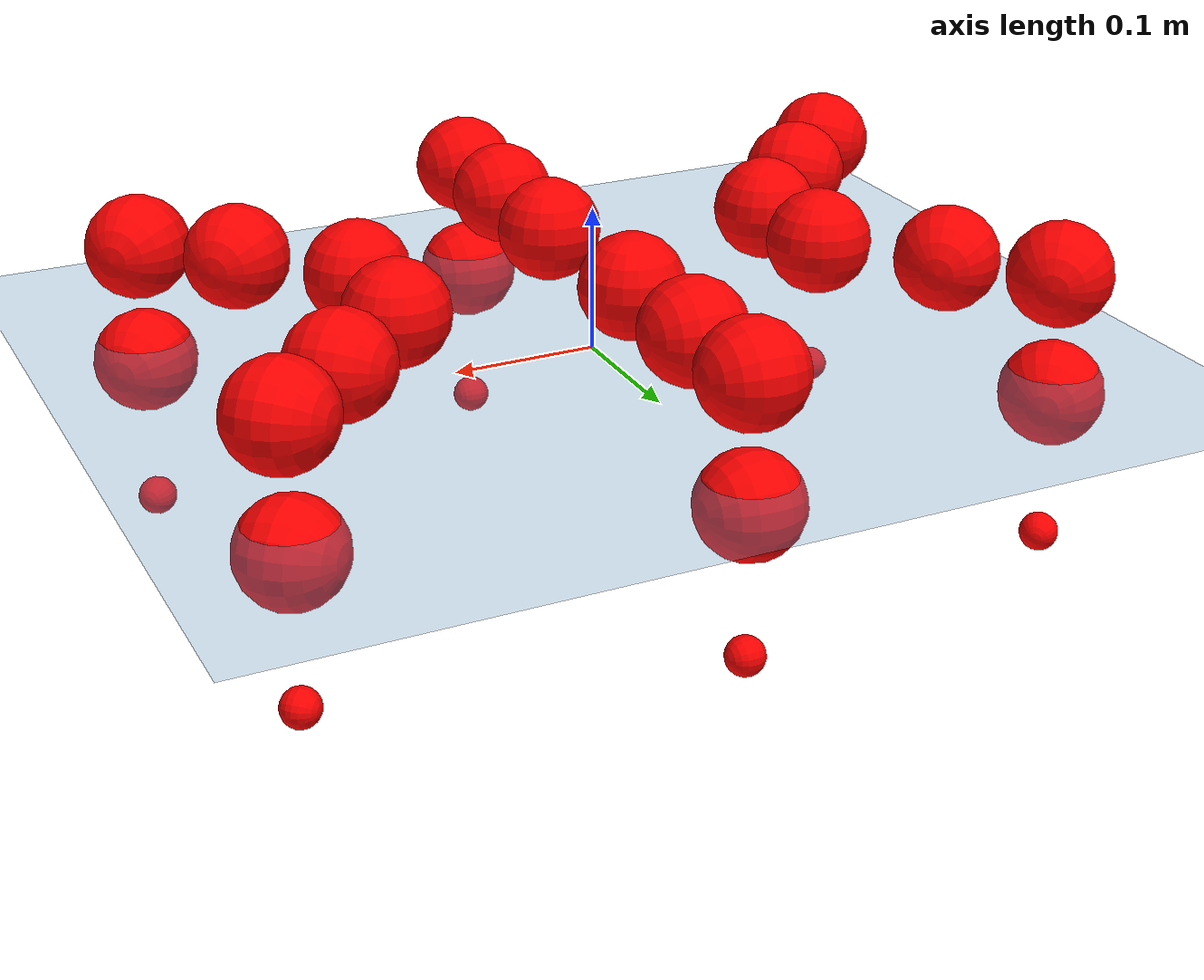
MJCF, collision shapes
<mujoco model="Golem">
  <compiler angle="radian" assetdir="assets" balanceinertia="true" inertiafromgeom="false"/>

  <option timestep="0.005" density="1.2" viscosity="2e-05"/>

  <size nkey="1"/>

  <visual>
    <quality shadowsize="8192"/>
    <map shadowclip="0.5"/>
  </visual>

  <default>
    <default class="/">
      <joint armature="0.01" damping="0.01" frictionloss="0.01"/>
      <geom contype="0" conaffinity="0" group="1" solref="-1000 -80"/>
      <site size="0.01 0.005 0.005" group="5"/>
      <general forcelimited="true" biastype="affine" gainprm="25" biasprm="0 -25 -0.5"/>
      <default class="visual">
        <geom type="mesh" group="2"/>
      </default>
      <default class="collision">
        <geom group="3"/>
      </default>
      <default class="foot">
        <geom size="0.01 0 0" condim="6" group="4" priority="1" solimp="0.015 1 0.01"/>
      </default>
      <default class="reward_collision_sphere">
        <geom group="5" rgba="1 0 0 1"/>
      </default>
    </default>
  </default>

  <asset>
    <texture type="skybox" colorspace="auto" name="//unnamed_texture_0" builtin="gradient" rgb1="0.95 0.95 0.95" rgb2="0.95 0.95 0.95" width="100" height="600"/>
    <texture type="2d" colorspace="auto" name="texplane" builtin="checker" rgb1="0.345 0.575 0.748" rgb2="0.345 0.575 0.748" markrgb="1 1 1" width="512" height="512"/>
    <material name="MatPlane" class="/" texture="texplane" texuniform="true" texrepeat="2 2" specular="0.9"/>
    <mesh name="body" class="/" file="body.stl" scale="0.001 0.001 0.001"/>
    <mesh name="coxa" class="/" file="coxa.stl" scale="0.001 0.001 0.001"/>
    <mesh name="femur" class="/" file="femur.stl" scale="0.001 0.001 0.001"/>
    <mesh name="tibia" class="/" file="tibia.stl" scale="0.001 0.001 0.001"/>
    <mesh name="tarsus" class="/" file="tarsus.stl" scale="0.001 0.001 0.001"/>
  </asset>

  <worldbody>
    <geom name="floor" class="/" size="100 100 0.125" type="plane" group="0" material="MatPlane"/>
    <light name="toplight_shadow" class="/" pos="0 0 5" dir="0.0990148 0.0990148 -0.990148" type="directional" ambient="0.04 0.04 0.04" diffuse="0.55 0.55 0.55" specular="0.12 0.12 0.12"/>
    <light name="toplight_fill" class="/" pos="0 0 5" dir="0.0990148 0.0990148 -0.990148" type="directional" castshadow="false" ambient="0.04 0.04 0.04" diffuse="0.3 0.3 0.3" specular="0.08 0.08 0.08"/>
    <body name="trunk" pos="5.37307e-05 -1.7846e-05 -0.000150757" quat="1 0.000285431 -0.000342695 0.000352999">
      <inertial pos="-0.00056331 0.000747897 -0.00378786" quat="0.999987 0.00469501 0.0016911 -0.000362174" mass="2.62677" diaginertia="0.00901652 0.00165197 0.0106967"/>
      <joint name="//unnamed_joint_0" type="free"/>
      <geom name="//unnamed_geom_1" class="/" pos="0 0 0.0648651" quat="1 0 0 0" type="mesh" rgba="0.9 0.9 0.9 1" mesh="body"/>
      <site name="imu" class="/" pos="0.130985 0.00654213 0.112674" size="0.0089543"/>
      <camera name="track" class="/" pos="0 -1.39038 0" quat="0.707107 0.707107 0 0" mode="trackcom"/>
      <camera name="ego_camera" class="/" pos="0.127086 0 0.101352" quat="-0.5 -0.5 0.5 0.5"/>
      <body name="coxa_RR" pos="-0.174132 -0.0582134 0.0662134" quat="0.382701 -0.00112649 -0.000358763 -0.923871">
        <inertial pos="0.000846741 -0.000984681 0.000708626" quat="0.99999 0.000418342 -0.00263052 -0.00365163" mass="0.147814" diaginertia="0.00912064 0.00167621 0.011128"/>
        <joint name="coxa_joint_RR" class="/" pos="0 0 0" axis="-0.00253693 0.00752197 -0.999968" range="-3.15763 3.15846" armature="0.00886762" damping="0" frictionloss="0.0084984"/>
        <geom name="//unnamed_geom_2" class="/" type="mesh" rgba="0.2 0.2 0.2 1" mesh="coxa"/>
        <geom name="//unnamed_geom_3" class="reward_collision_sphere" size="0.0358172" pos="-0.0293276 0 0"/>
        <body name="femur_RR" pos="0.0581955 0.000933728 0.000780401" quat="0.500179 -0.500752 0.499769 0.499299">
          <inertial pos="-2.00573e-05 0.00207318 -0.000452022" quat="1 0.000217273 -4.03841e-05 -9.09907e-05" mass="0.141597" diaginertia="0.0087294 0.00160705 0.0105009"/>
          <joint name="femur_joint_RR" class="/" pos="0 0 0" axis="-0.00106191 -0.000645869 -0.999999" range="-3.15933 3.15909" armature="0.00954951" damping="0" frictionloss="0.00900543"/>
          <geom name="//unnamed_geom_4" class="/" type="mesh" rgba="0.9 0.9 0.9 1" mesh="femur"/>
          <geom name="//unnamed_geom_5" class="reward_collision_sphere" size="0.0358172"/>
          <body name="tibia_RR" pos="-0.000558706 -0.076412 -0.000359691" quat="-3.62133e-05 1 5.45357e-06 -2.01172e-05">
            <inertial pos="0.00034969 0.00210441 -9.06995e-05" quat="1 4.65506e-05 3.90132e-05 -0.000124234" mass="0.142482" diaginertia="0.00882848 0.00161719 0.0105405"/>
            <joint name="tibia_joint_RR" class="/" pos="0 0 0" axis="0.00714029 -0.00683374 0.999951" range="-3.10031 3.13323" armature="0.00911987" damping="0.00114152" frictionloss="0.0100176"/>
            <geom name="//unnamed_geom_6" class="/" type="mesh" rgba="0.2 0.2 0.2 1" mesh="tibia"/>
            <geom name="//unnamed_geom_7" class="reward_collision_sphere" size="0.0358172"/>
            <body name="tarsus_RR" pos="0.0848549 0.00131048 -0.00216638" quat="1 0.000147844 -6.98032e-05 5.75446e-05">
              <inertial pos="0.057811 0.000457548 0.000514303" quat="0.498694 0.501201 0.498022 0.502071" mass="0.140475" diaginertia="0.00874084 0.00160753 0.0107835"/>
              <joint name="tarsus_joint_RR" class="/" pos="0 0 0" axis="0.000435252 0.00296355 0.999996" range="-3.13145 3.12761" armature="0.00930089" damping="0.00367742" frictionloss="0.00911473"/>
              <geom name="//unnamed_geom_8" class="/" type="mesh" rgba="0.9 0.9 0.9 1" mesh="tarsus"/>
              <geom name="foot_1" class="foot" size="0.00848687" pos="0.10949 0 0" quat="0 -0.707107 0 0.707107"/>
              <geom name="//unnamed_geom_10" class="reward_collision_sphere" size="0.0358172"/>
              <geom name="//unnamed_geom_11" class="reward_collision_sphere" size="0.0134315" pos="0.10509 0 0"/>
              <site name="foot_1" class="foot" pos="0.10949 0 0" quat="0 -0.707107 0 0.707107" size="0.0089543"/>
            </body>
          </body>
        </body>
      </body>
      <body name="coxa_RM" pos="0.0018757 -0.0947312 0.0653943" quat="0.707088 -5.93912e-05 -7.45361e-05 -0.707125">
        <inertial pos="0.000660621 -6.10457e-05 -0.00106348" quat="0.999936 0.00508661 -0.00991063 0.00172903" mass="0.148896" diaginertia="0.00923005 0.00171209 0.0111208"/>
        <joint name="coxa_joint_RM" class="/" pos="0 0 0" axis="-0.00843995 0.00393197 -0.999957" range="-3.13984 3.14923" armature="0.00932869" damping="0.0131011" frictionloss="0.0090525"/>
        <geom name="//unnamed_geom_12" class="/" type="mesh" rgba="0.2 0.2 0.2 1" mesh="coxa"/>
        <geom name="//unnamed_geom_13" class="reward_collision_sphere" size="0.0358172" pos="-0.0293276 0 0"/>
        <body name="femur_RM" pos="0.0553084 -0.00121759 0.000105322" quat="0.499948 -0.500097 0.500064 0.49989">
          <inertial pos="-0.000246326 0.000364348 -0.000419415" quat="1 -3.75212e-05 -0.000123537 0.00016809" mass="0.143064" diaginertia="0.00878736 0.00162892 0.0108087"/>
          <joint name="femur_joint_RM" class="/" pos="0 0 0" axis="0.000302388 0.000292387 -1" range="-3.11671 3.12548" armature="0.00915615" damping="0.00771746" frictionloss="0.00970199"/>
          <geom name="//unnamed_geom_14" class="/" type="mesh" rgba="0.9 0.9 0.9 1" mesh="femur"/>
          <geom name="//unnamed_geom_15" class="reward_collision_sphere" size="0.0358172"/>
          <body name="tibia_RM" pos="0.000819256 -0.0742209 -0.00111433" quat="-5.24785e-05 1 8.73396e-05 -0.000216563">
            <inertial pos="0.000650464 0.000247791 0.000972179" quat="0.999999 -0.000308266 -0.000886114 -0.00109338" mass="0.147136" diaginertia="0.00893451 0.00162659 0.0107849"/>
            <joint name="tibia_joint_RM" class="/" pos="0 0 0" axis="-0.00257363 -0.00794456 0.999965" range="-3.15883 3.14714" armature="0.00805278" damping="0.00943861" frictionloss="0.0098132"/>
            <geom name="//unnamed_geom_16" class="/" type="mesh" rgba="0.2 0.2 0.2 1" mesh="tibia"/>
            <geom name="//unnamed_geom_17" class="reward_collision_sphere" size="0.0358172"/>
            <body name="tarsus_RM" pos="0.0831602 -0.00202919 9.08943e-05" quat="1 0.000222207 7.87199e-05 -5.39242e-05">
              <inertial pos="0.0583633 0.000900035 2.2871e-05" quat="0.501144 0.49979 0.499705 0.499359" mass="0.148562" diaginertia="0.00909093 0.00166303 0.0109157"/>
              <joint name="tarsus_joint_RM" class="/" pos="0 0 0" axis="0.00348865 0.00320023 0.999989" range="-3.15995 3.14549" armature="0.00931455" damping="0.00485657" frictionloss="0.00869599"/>
              <geom name="//unnamed_geom_18" class="/" type="mesh" rgba="0.9 0.9 0.9 1" mesh="tarsus"/>
              <geom name="foot_2" class="foot" size="0.00896747" pos="0.10949 0 0" quat="0 -0.707107 0 0.707107"/>
              <geom name="//unnamed_geom_20" class="reward_collision_sphere" size="0.0358172"/>
              <geom name="//unnamed_geom_21" class="reward_collision_sphere" size="0.0134315" pos="0.10509 0 0"/>
              <site name="foot_2" class="foot" pos="0.10949 0 0" quat="0 -0.707107 0 0.707107" size="0.0089543"/>
            </body>
          </body>
        </body>
      </body>
      <body name="coxa_RF" pos="0.172874 -0.0600116 0.0665562" quat="0.92388 -0.000215731 -0.000251959 -0.382681">
        <inertial pos="-0.00186918 0.000616298 -0.000693298" quat="1 1.85366e-05 2.31506e-05 -5.28188e-06" mass="0.143865" diaginertia="0.00919768 0.00168035 0.0109929"/>
        <joint name="coxa_joint_RF" class="/" pos="0 0 0" axis="0.0021885 -0.00788404 -0.999967" range="-3.12833 3.13676" armature="0.00897019" damping="0.019777" frictionloss="0.00973033"/>
        <geom name="//unnamed_geom_22" class="/" type="mesh" rgba="0.2 0.2 0.2 1" mesh="coxa"/>
        <geom name="//unnamed_geom_23" class="reward_collision_sphere" size="0.0358172" pos="-0.0293276 0 0"/>
        <body name="femur_RF" pos="0.0592287 0.000119176 0.000277535" quat="0.499862 -0.499681 0.500608 0.499849">
          <inertial pos="0.000420704 -0.000411089 0.00082329" quat="0.999998 -0.00144492 -0.00164332 -0.000179025" mass="0.144902" diaginertia="0.00889514 0.00161492 0.0107006"/>
          <joint name="femur_joint_RF" class="/" pos="0 0 0" axis="0.0034886 0.00405103 -0.999986" range="-3.15606 3.14253" armature="0.00931519" damping="0.00990838" frictionloss="0.00914172"/>
          <geom name="//unnamed_geom_24" class="/" type="mesh" rgba="0.9 0.9 0.9 1" mesh="femur"/>
          <geom name="//unnamed_geom_25" class="reward_collision_sphere" size="0.0358172"/>
          <body name="tibia_RF" pos="0.0020159 -0.0750301 0.000564683" quat="0.000555346 1 5.80266e-05 0.000142752">
            <inertial pos="-0.000217762 -0.00160194 -0.00118987" quat="0.999965 -0.00163733 -0.00315239 0.00757334" mass="0.137815" diaginertia="0.00877678 0.00158377 0.0106616"/>
            <joint name="tibia_joint_RF" class="/" pos="0 0 0" axis="0.00517337 -0.00531966 0.999972" stiffness="0.00103361" range="-3.12584 3.1426" armature="0.00906433" damping="0" frictionloss="0.00902493"/>
            <geom name="//unnamed_geom_26" class="/" type="mesh" rgba="0.2 0.2 0.2 1" mesh="tibia"/>
            <geom name="//unnamed_geom_27" class="reward_collision_sphere" size="0.0358172"/>
            <body name="tarsus_RF" pos="0.0829012 0.000421805 -0.00109688" quat="1 1.55557e-05 -3.28859e-05 -1.675e-05">
              <inertial pos="0.0570373 -6.18394e-05 -0.0005713" quat="0.501744 0.496338 0.502956 0.498937" mass="0.145709" diaginertia="0.00910392 0.00161272 0.0108171"/>
              <joint name="tarsus_joint_RF" class="/" pos="0 0 0" axis="-0.00218838 0.0140684 0.999899" range="-3.1444 3.14833" armature="0.0092333" damping="0.00844789" frictionloss="0.00880711"/>
              <geom name="//unnamed_geom_28" class="/" type="mesh" rgba="0.9 0.9 0.9 1" mesh="tarsus"/>
              <geom name="foot_3" class="foot" size="0.0086233" pos="0.10949 0 0" quat="0 -0.707107 0 0.707107"/>
              <geom name="//unnamed_geom_30" class="reward_collision_sphere" size="0.0358172"/>
              <geom name="//unnamed_geom_31" class="reward_collision_sphere" size="0.0134315" pos="0.10509 0 0"/>
              <site name="foot_3" class="foot" pos="0.10949 0 0" quat="0 -0.707107 0 0.707107" size="0.0089543"/>
            </body>
          </body>
        </body>
      </body>
      <body name="coxa_LR" pos="-0.173145 0.0592142 0.0665521" quat="0.383345 0.000143214 -0.000383857 0.923605">
        <inertial pos="0.000822645 0.000950654 -0.00107865" quat="0.999999 -0.000280123 0.000465446 0.00159267" mass="0.142476" diaginertia="0.00901505 0.0016134 0.0106583"/>
        <joint name="coxa_joint_LR" class="/" pos="0 0 0" axis="-0.00365269 0.00830942 -0.999959" range="-3.12247 3.17472" armature="0.00895972" damping="0.0104009" frictionloss="0.00921853"/>
        <geom name="//unnamed_geom_32" class="/" type="mesh" rgba="0.2 0.2 0.2 1" mesh="coxa"/>
        <geom name="//unnamed_geom_33" class="reward_collision_sphere" size="0.0358172" pos="-0.0293276 0 0"/>
        <body name="femur_LR" pos="0.0593664 -0.00166547 -0.000836414" quat="0.500029 -0.500088 0.499682 0.500201">
          <inertial pos="0.000417703 0.000464051 -0.00113305" quat="0.999948 0.00927485 0.00128129 -0.0041131" mass="0.146188" diaginertia="0.00909205 0.00165663 0.0107567"/>
          <joint name="femur_joint_LR" class="/" pos="0 0 0" axis="-0.0127349 0.00308067 0.999914" range="-3.12536 3.11955" armature="0.00998295" damping="0.00616211" frictionloss="0.00885611"/>
          <geom name="//unnamed_geom_34" class="/" type="mesh" rgba="0.9 0.9 0.9 1" mesh="femur"/>
          <geom name="//unnamed_geom_35" class="reward_collision_sphere" size="0.0358172"/>
          <body name="tibia_LR" pos="0.000939309 -0.0757722 -0.00215028" quat="0.000173958 1 0.000358624 0.000278327">
            <inertial pos="0.000375791 -0.000854684 0.00111002" quat="0.999998 0.000854766 -0.000882262 0.0018084" mass="0.145611" diaginertia="0.00883331 0.00159614 0.0107461"/>
            <joint name="tibia_joint_LR" class="/" pos="0 0 0" axis="0.00188777 1.57331e-05 -0.999998" range="-3.09904 3.15235" armature="0.00845107" damping="0.00811815" frictionloss="0.00893088"/>
            <geom name="//unnamed_geom_36" class="/" type="mesh" rgba="0.2 0.2 0.2 1" mesh="tibia"/>
            <geom name="//unnamed_geom_37" class="reward_collision_sphere" size="0.0358172"/>
            <body name="tarsus_LR" pos="0.0842438 0.000924128 0.00160373" quat="1 -1.22166e-05 -3.47034e-05 2.9298e-05">
              <inertial pos="0.0595173 -0.00114215 -7.19202e-05" quat="0.500126 0.499962 0.500078 0.499833" mass="0.142079" diaginertia="0.00903329 0.00169294 0.0107663"/>
              <joint name="tarsus_joint_LR" class="/" pos="0 0 0" axis="0.00170326 -0.00372781 -0.999992" range="-3.12914 3.13763" armature="0.00889444" damping="0.00105425" frictionloss="0.00902946"/>
              <geom name="//unnamed_geom_38" class="/" type="mesh" rgba="0.9 0.9 0.9 1" mesh="tarsus"/>
              <geom name="foot_4" class="foot" size="0.00886214" pos="0.10949 0 0" quat="0.707107 0 -0.707107 0"/>
              <geom name="//unnamed_geom_40" class="reward_collision_sphere" size="0.0358172"/>
              <geom name="//unnamed_geom_41" class="reward_collision_sphere" size="0.0134315" pos="0.10509 0 0"/>
              <site name="foot_4" class="foot" pos="0.10949 0 0" quat="0.707107 0 -0.707107 0" size="0.0089543"/>
            </body>
          </body>
        </body>
      </body>
      <body name="coxa_LM" pos="0.000959537 0.0906807 0.0673749" quat="0.707182 0.000158076 0.000633267 0.707031">
        <inertial pos="0.000190542 -6.03027e-05 -0.00125713" quat="1 0.00025926 0.000515005 -0.000624154" mass="0.143771" diaginertia="0.00874426 0.0016123 0.0105493"/>
        <joint name="coxa_joint_LM" class="/" pos="0 0 0" axis="-0.000710596 -1.75468e-05 -1" stiffness="0.000466335" range="-3.13499 3.13575" armature="0.00849633" damping="0.00364859" frictionloss="0.0089342"/>
        <geom name="//unnamed_geom_42" class="/" type="mesh" rgba="0.2 0.2 0.2 1" mesh="coxa"/>
        <geom name="//unnamed_geom_43" class="reward_collision_sphere" size="0.0358172" pos="-0.0293276 0 0"/>
        <body name="femur_LM" pos="0.0548981 0.000159668 -5.4262e-05" quat="0.499833 -0.500133 0.500047 0.499987">
          <inertial pos="-0.000687072 -0.000106871 -0.00241016" quat="0.999993 0.00186756 0.000619196 -0.00330818" mass="0.144872" diaginertia="0.00900964 0.00164696 0.0108072"/>
          <joint name="femur_joint_LM" class="/" pos="0 0 0" axis="0.00296678 0.00271488 0.999992" range="-3.15419 3.09451" armature="0.00899169" damping="0" frictionloss="0.00836201"/>
          <geom name="//unnamed_geom_44" class="/" type="mesh" rgba="0.9 0.9 0.9 1" mesh="femur"/>
          <geom name="//unnamed_geom_45" class="reward_collision_sphere" size="0.0358172"/>
          <body name="tibia_LM" pos="9.83424e-05 -0.0721913 0.00113699" quat="-0.000291415 1 1.18238e-05 0.0002712">
            <inertial pos="-0.000907845 3.55748e-05 -9.32718e-05" quat="1 -0.00010734 1.24095e-05 -0.000118994" mass="0.138687" diaginertia="0.00867467 0.0015753 0.0103611"/>
            <joint name="tibia_joint_LM" class="/" pos="0 0 0" axis="-0.00641078 0.00405765 -0.999971" range="-3.11644 3.15073" armature="0.0100768" damping="0" frictionloss="0.0094622"/>
            <geom name="//unnamed_geom_46" class="/" type="mesh" rgba="0.2 0.2 0.2 1" mesh="tibia"/>
            <geom name="//unnamed_geom_47" class="reward_collision_sphere" size="0.0358172"/>
            <body name="tarsus_LM" pos="0.0868656 6.94416e-05 -0.00091705" quat="1 -4.90298e-06 2.47812e-05 6.4671e-06">
              <inertial pos="0.05976 -0.00146521 -0.000434929" quat="0.501041 0.499027 0.501698 0.498225" mass="0.139741" diaginertia="0.00875097 0.00152806 0.0105103"/>
              <joint name="tarsus_joint_LM" class="/" pos="0 0 0" axis="-0.000310928 -0.000289828 -1" stiffness="0.00715203" range="-3.13855 3.13843" armature="0.00901019" damping="0.0187824" frictionloss="0.0099458"/>
              <geom name="//unnamed_geom_48" class="/" type="mesh" rgba="0.9 0.9 0.9 1" mesh="tarsus"/>
              <geom name="foot_5" class="foot" size="0.00901727" pos="0.10949 0 0" quat="0.707107 0 -0.707107 0"/>
              <geom name="//unnamed_geom_50" class="reward_collision_sphere" size="0.0358172"/>
              <geom name="//unnamed_geom_51" class="reward_collision_sphere" size="0.0134315" pos="0.10509 0 0"/>
              <site name="foot_5" class="foot" pos="0.10949 0 0" quat="0.707107 0 -0.707107 0" size="0.0089543"/>
            </body>
          </body>
        </body>
      </body>
      <body name="coxa_LF" pos="0.174392 0.0569018 0.0659078" quat="0.923942 -0.000272491 1.05446e-05 0.382531">
        <inertial pos="-0.00170155 -0.00225673 -0.000260104" quat="0.999989 -0.00109906 -0.00313689 0.00330512" mass="0.142168" diaginertia="0.00880659 0.00155619 0.0106726"/>
        <joint name="coxa_joint_LF" class="/" pos="0 0 0" axis="0.00545046 -0.00335048 -0.99998" range="-3.13292 3.13811" armature="0.00838955" damping="0" frictionloss="0.00858639"/>
        <geom name="//unnamed_geom_52" class="/" type="mesh" rgba="0.2 0.2 0.2 1" mesh="coxa"/>
        <geom name="//unnamed_geom_53" class="reward_collision_sphere" size="0.0358172" pos="-0.0293276 0 0"/>
        <body name="femur_LF" pos="0.0581066 0.00231761 0.00044152" quat="0.499825 -0.500098 0.49993 0.500147">
          <inertial pos="0.000159308 9.83498e-05 -0.000940487" quat="1 0.000108716 -0.00019668 -2.46455e-05" mass="0.139057" diaginertia="0.00852448 0.00159356 0.0104946"/>
          <joint name="femur_joint_LF" class="/" pos="0 0 0" axis="0.00890602 0.00494132 0.999948" range="-3.12536 3.15902" armature="0.00880888" damping="0.00537689" frictionloss="0.00905703"/>
          <geom name="//unnamed_geom_54" class="/" type="mesh" rgba="0.9 0.9 0.9 1" mesh="femur"/>
          <geom name="//unnamed_geom_55" class="reward_collision_sphere" size="0.0358172"/>
          <body name="tibia_LF" pos="-0.00031993 -0.0766578 -0.000569163" quat="-2.12876e-05 1 0.000192538 -1.72846e-05">
            <inertial pos="-9.48694e-05 0.00193937 0.000537159" quat="0.999997 -0.00211573 0.00134563 -0.0005931" mass="0.144857" diaginertia="0.00896254 0.0016361 0.0108087"/>
            <joint name="tibia_joint_LF" class="/" pos="0 0 0" axis="0.000739725 0.00104815 -0.999999" range="-3.12935 3.11894" armature="0.00946257" damping="0.000969633" frictionloss="0.00856929"/>
            <geom name="//unnamed_geom_56" class="/" type="mesh" rgba="0.2 0.2 0.2 1" mesh="tibia"/>
            <geom name="//unnamed_geom_57" class="reward_collision_sphere" size="0.0358172"/>
            <body name="tarsus_LF" pos="0.0872733 -0.000187158 -0.0019018" quat="1 4.30516e-07 1.96097e-07 2.47765e-06">
              <inertial pos="0.0576666 -0.000521839 0.000865411" quat="0.508138 0.492845 0.495846 0.503027" mass="0.144931" diaginertia="0.00896296 0.0016159 0.0106017"/>
              <joint name="tarsus_joint_LF" class="/" pos="0 0 0" axis="-0.00892353 0.00643258 -0.999939" stiffness="0.0301026" range="-3.15378 3.12706" armature="0.00888303" damping="0.0282244" frictionloss="0.00930576"/>
              <geom name="//unnamed_geom_58" class="/" type="mesh" rgba="0.9 0.9 0.9 1" mesh="tarsus"/>
              <geom name="foot_6" class="foot" size="0.00876941" pos="0.10949 0 0" quat="0.707107 0 -0.707107 0"/>
              <geom name="//unnamed_geom_60" class="reward_collision_sphere" size="0.0358172"/>
              <geom name="//unnamed_geom_61" class="reward_collision_sphere" size="0.0134315" pos="0.10509 0 0"/>
              <site name="foot_6" class="foot" pos="0.10949 0 0" quat="0.707107 0 -0.707107 0" size="0.0089543"/>
            </body>
          </body>
        </body>
      </body>
    </body>
  </worldbody>

  <contact>
    <pair class="/" geom1="floor" geom2="foot_1" name="//unnamed_contact_0"/>
    <pair class="/" geom1="floor" geom2="foot_2" name="//unnamed_contact_1"/>
    <pair class="/" geom1="floor" geom2="foot_3" name="//unnamed_contact_2"/>
    <pair class="/" geom1="floor" geom2="foot_4" name="//unnamed_contact_3"/>
    <pair class="/" geom1="floor" geom2="foot_5" name="//unnamed_contact_4"/>
    <pair class="/" geom1="floor" geom2="foot_6" name="//unnamed_contact_5"/>
  </contact>

  <actuator>
    <general name="coxa_joint_RR" class="/" joint="coxa_joint_RR" forcerange="-6.57424 6.57424" gainprm="21.5978" biasprm="0 -21.5978 -0.453003"/>
    <general name="femur_joint_RR" class="/" joint="femur_joint_RR" forcerange="-6.33156 6.33156" gainprm="21.5978" biasprm="0 -21.5978 -0.453003"/>
    <general name="tibia_joint_RR" class="/" joint="tibia_joint_RR" forcerange="-6.52312 6.52312" gainprm="21.5978" biasprm="0 -21.5978 -0.453003"/>
    <general name="tarsus_joint_RR" class="/" joint="tarsus_joint_RR" forcerange="-6.81657 6.81657" gainprm="21.5978" biasprm="0 -21.5978 -0.453003"/>
    <general name="coxa_joint_RM" class="/" joint="coxa_joint_RM" forcerange="-6.78034 6.78034" gainprm="21.5978" biasprm="0 -21.5978 -0.453003"/>
    <general name="femur_joint_RM" class="/" joint="femur_joint_RM" forcerange="-6.82823 6.82823" gainprm="21.5978" biasprm="0 -21.5978 -0.453003"/>
    <general name="tibia_joint_RM" class="/" joint="tibia_joint_RM" forcerange="-6.30825 6.30825" gainprm="21.5978" biasprm="0 -21.5978 -0.453003"/>
    <general name="tarsus_joint_RM" class="/" joint="tarsus_joint_RM" forcerange="-6.31123 6.31123" gainprm="21.5978" biasprm="0 -21.5978 -0.453003"/>
    <general name="coxa_joint_RF" class="/" joint="coxa_joint_RF" forcerange="-6.26258 6.26258" gainprm="21.5978" biasprm="0 -21.5978 -0.453003"/>
    <general name="femur_joint_RF" class="/" joint="femur_joint_RF" forcerange="-6.60195 6.60195" gainprm="21.5978" biasprm="0 -21.5978 -0.453003"/>
    <general name="tibia_joint_RF" class="/" joint="tibia_joint_RF" forcerange="-6.28582 6.28582" gainprm="21.5978" biasprm="0 -21.5978 -0.453003"/>
    <general name="tarsus_joint_RF" class="/" joint="tarsus_joint_RF" forcerange="-6.54634 6.54634" gainprm="21.5978" biasprm="0 -21.5978 -0.453003"/>
    <general name="coxa_joint_LR" class="/" joint="coxa_joint_LR" forcerange="-6.48879 6.48879" gainprm="21.5978" biasprm="0 -21.5978 -0.453003"/>
    <general name="femur_joint_LR" class="/" joint="femur_joint_LR" forcerange="-6.5501 6.5501" gainprm="21.5978" biasprm="0 -21.5978 -0.453003"/>
    <general name="tibia_joint_LR" class="/" joint="tibia_joint_LR" forcerange="-6.40743 6.40743" gainprm="21.5978" biasprm="0 -21.5978 -0.453003"/>
    <general name="tarsus_joint_LR" class="/" joint="tarsus_joint_LR" forcerange="-6.60357 6.60357" gainprm="21.5978" biasprm="0 -21.5978 -0.453003"/>
    <general name="coxa_joint_LM" class="/" joint="coxa_joint_LM" forcerange="-6.64455 6.64455" gainprm="21.5978" biasprm="0 -21.5978 -0.453003"/>
    <general name="femur_joint_LM" class="/" joint="femur_joint_LM" forcerange="-6.58998 6.58998" gainprm="21.5978" biasprm="0 -21.5978 -0.453003"/>
    <general name="tibia_joint_LM" class="/" joint="tibia_joint_LM" forcerange="-6.54895 6.54895" gainprm="21.5978" biasprm="0 -21.5978 -0.453003"/>
    <general name="tarsus_joint_LM" class="/" joint="tarsus_joint_LM" forcerange="-6.29987 6.29987" gainprm="21.5978" biasprm="0 -21.5978 -0.453003"/>
    <general name="coxa_joint_LF" class="/" joint="coxa_joint_LF" forcerange="-6.66509 6.66509" gainprm="21.5978" biasprm="0 -21.5978 -0.453003"/>
    <general name="femur_joint_LF" class="/" joint="femur_joint_LF" forcerange="-6.51894 6.51894" gainprm="21.5978" biasprm="0 -21.5978 -0.453003"/>
    <general name="tibia_joint_LF" class="/" joint="tibia_joint_LF" forcerange="-6.52675 6.52675" gainprm="21.5978" biasprm="0 -21.5978 -0.453003"/>
    <general name="tarsus_joint_LF" class="/" joint="tarsus_joint_LF" forcerange="-6.59168 6.59168" gainprm="21.5978" biasprm="0 -21.5978 -0.453003"/>
  </actuator>

  <sensor>
    <gyro site="imu" name="imu_angular_velocity"/>
    <velocimeter site="imu" name="imu_linear_velocity"/>
    <framelinvel objtype="site" objname="foot_1" name="foot_1_global_linear_velocity"/>
    <framelinvel objtype="site" objname="foot_2" name="foot_2_global_linear_velocity"/>
    <framelinvel objtype="site" objname="foot_3" name="foot_3_global_linear_velocity"/>
    <framelinvel objtype="site" objname="foot_4" name="foot_4_global_linear_velocity"/>
    <framelinvel objtype="site" objname="foot_5" name="foot_5_global_linear_velocity"/>
    <framelinvel objtype="site" objname="foot_6" name="foot_6_global_linear_velocity"/>
  </sensor>

  <keyframe>
    <key name="home" qpos="0 0 0.1457 1 0 0 0 0 0 0 0 0 0 0 0 0 0 0 0 0 0 0 0 0 0 0 0 0 0 0 0"/>
  </keyframe>
</mujoco>
